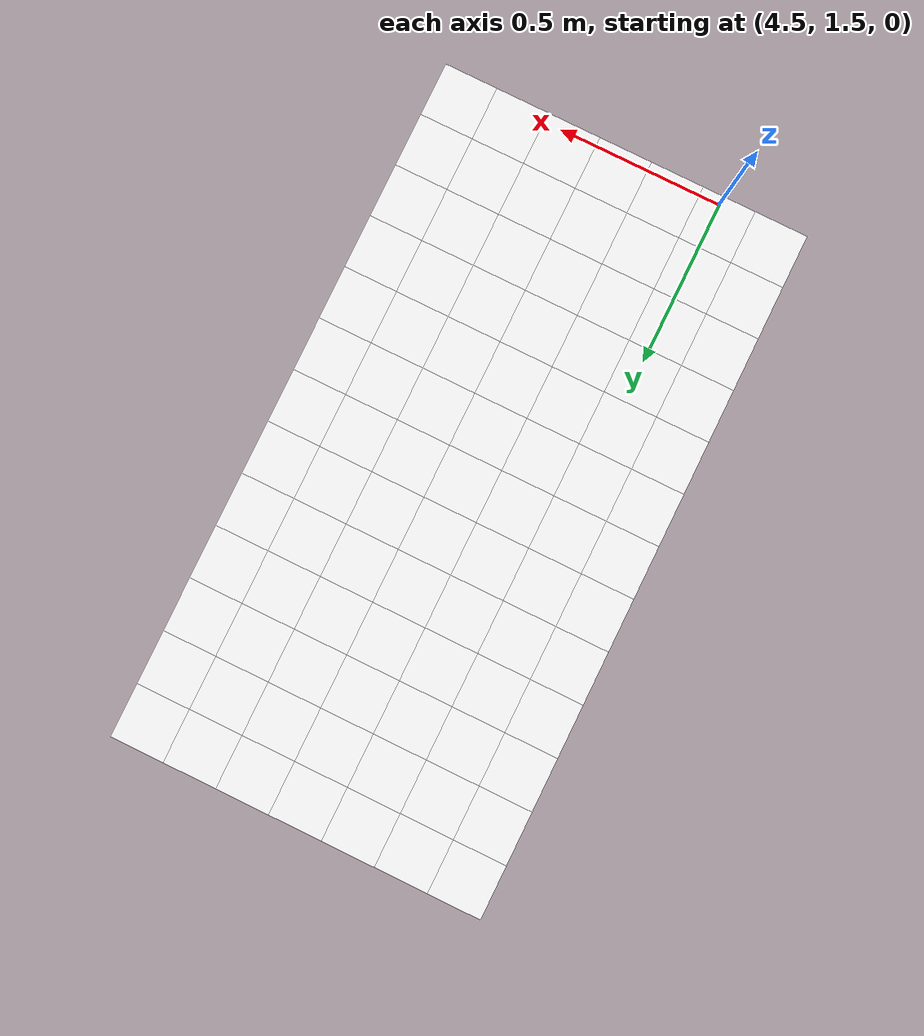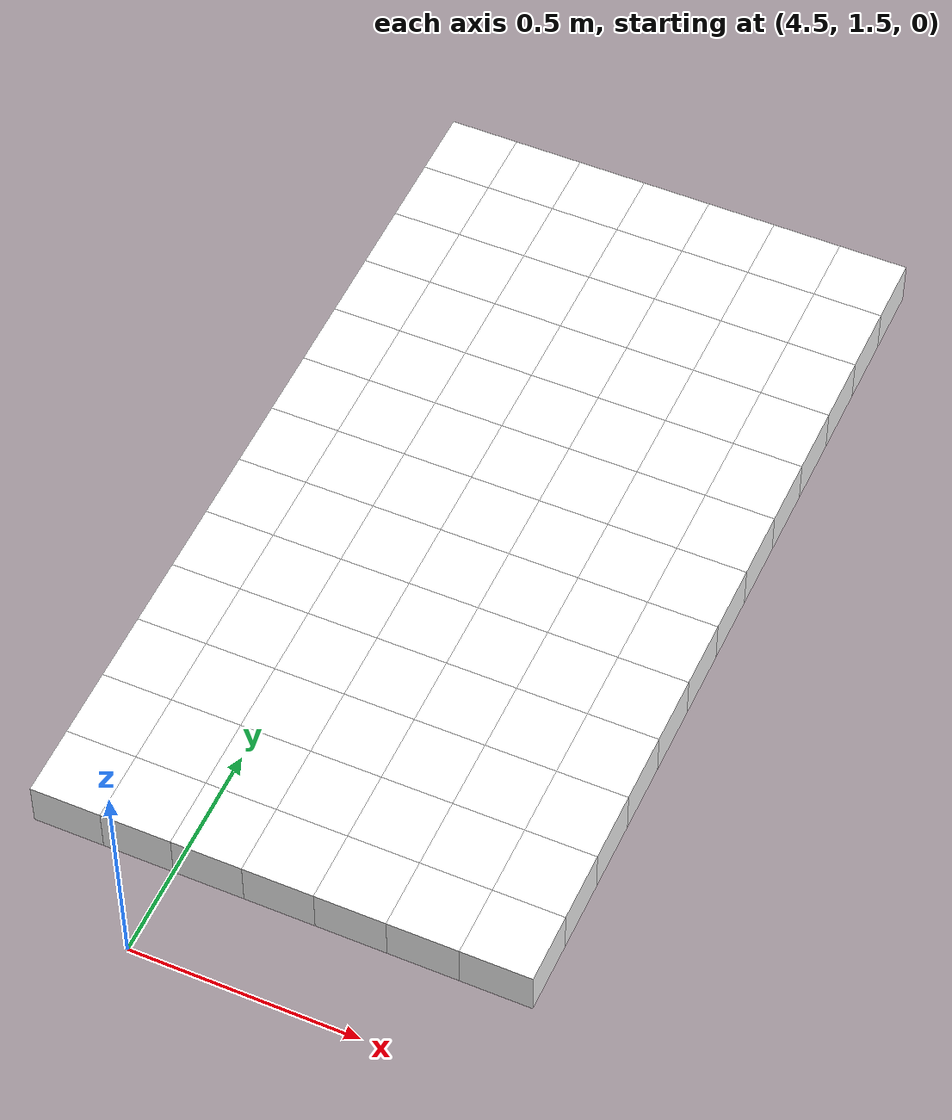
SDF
<sdf version="1.7">
 <world name="default">
  <include><uri>model://sun</uri></include>
  <model name="static_environment">
   <static>true</static>
   <link name="region_753">
    <pose>4.350000000000005 1.65 0.26 0.0 0.0 0.0</pose>
    <collision name="region_753_collision">
     <geometry><box><size>0.15 0.15 0.1</size></box></geometry>
     <surface><friction><ode><mu>1.0</mu><mu2>1.0</mu2></ode></friction></surface>
    </collision>
    <visual name="region_753_visual">
     <geometry><box><size>0.15 0.15 0.1</size></box></geometry>
     <material><ambient>1.0 1.0 1.0 1.0</ambient><diffuse>1.0 1.0 1.0 1.0</diffuse></material>
    </visual>
   </link>
   <link name="region_754">
    <pose>4.500000000000005 1.65 0.26 0.0 0.0 0.0</pose>
    <collision name="region_754_collision">
     <geometry><box><size>0.15 0.15 0.1</size></box></geometry>
     <surface><friction><ode><mu>1.0</mu><mu2>1.0</mu2></ode></friction></surface>
    </collision>
    <visual name="region_754_visual">
     <geometry><box><size>0.15 0.15 0.1</size></box></geometry>
     <material><ambient>1.0 1.0 1.0 1.0</ambient><diffuse>1.0 1.0 1.0 1.0</diffuse></material>
    </visual>
   </link>
   <link name="region_755">
    <pose>4.650000000000006 1.65 0.26 0.0 0.0 0.0</pose>
    <collision name="region_755_collision">
     <geometry><box><size>0.15 0.15 0.1</size></box></geometry>
     <surface><friction><ode><mu>1.0</mu><mu2>1.0</mu2></ode></friction></surface>
    </collision>
    <visual name="region_755_visual">
     <geometry><box><size>0.15 0.15 0.1</size></box></geometry>
     <material><ambient>1.0 1.0 1.0 1.0</ambient><diffuse>1.0 1.0 1.0 1.0</diffuse></material>
    </visual>
   </link>
   <link name="region_756">
    <pose>4.800000000000006 1.65 0.26 0.0 0.0 0.0</pose>
    <collision name="region_756_collision">
     <geometry><box><size>0.15 0.15 0.1</size></box></geometry>
     <surface><friction><ode><mu>1.0</mu><mu2>1.0</mu2></ode></friction></surface>
    </collision>
    <visual name="region_756_visual">
     <geometry><box><size>0.15 0.15 0.1</size></box></geometry>
     <material><ambient>1.0 1.0 1.0 1.0</ambient><diffuse>1.0 1.0 1.0 1.0</diffuse></material>
    </visual>
   </link>
   <link name="region_757">
    <pose>4.950000000000006 1.65 0.26 0.0 0.0 0.0</pose>
    <collision name="region_757_collision">
     <geometry><box><size>0.15 0.15 0.1</size></box></geometry>
     <surface><friction><ode><mu>1.0</mu><mu2>1.0</mu2></ode></friction></surface>
    </collision>
    <visual name="region_757_visual">
     <geometry><box><size>0.15 0.15 0.1</size></box></geometry>
     <material><ambient>1.0 1.0 1.0 1.0</ambient><diffuse>1.0 1.0 1.0 1.0</diffuse></material>
    </visual>
   </link>
   <link name="region_758">
    <pose>5.100000000000007 1.65 0.26 0.0 0.0 0.0</pose>
    <collision name="region_758_collision">
     <geometry><box><size>0.15 0.15 0.1</size></box></geometry>
     <surface><friction><ode><mu>1.0</mu><mu2>1.0</mu2></ode></friction></surface>
    </collision>
    <visual name="region_758_visual">
     <geometry><box><size>0.15 0.15 0.1</size></box></geometry>
     <material><ambient>1.0 1.0 1.0 1.0</ambient><diffuse>1.0 1.0 1.0 1.0</diffuse></material>
    </visual>
   </link>
   <link name="region_759">
    <pose>5.250000000000007 1.65 0.26 0.0 0.0 0.0</pose>
    <collision name="region_759_collision">
     <geometry><box><size>0.15 0.15 0.1</size></box></geometry>
     <surface><friction><ode><mu>1.0</mu><mu2>1.0</mu2></ode></friction></surface>
    </collision>
    <visual name="region_759_visual">
     <geometry><box><size>0.15 0.15 0.1</size></box></geometry>
     <material><ambient>1.0 1.0 1.0 1.0</ambient><diffuse>1.0 1.0 1.0 1.0</diffuse></material>
    </visual>
   </link>
   <link name="region_773">
    <pose>4.350000000000005 1.7999999999999998 0.26 0.0 0.0 0.0</pose>
    <collision name="region_773_collision">
     <geometry><box><size>0.15 0.15 0.1</size></box></geometry>
     <surface><friction><ode><mu>1.0</mu><mu2>1.0</mu2></ode></friction></surface>
    </collision>
    <visual name="region_773_visual">
     <geometry><box><size>0.15 0.15 0.1</size></box></geometry>
     <material><ambient>1.0 1.0 1.0 1.0</ambient><diffuse>1.0 1.0 1.0 1.0</diffuse></material>
    </visual>
   </link>
   <link name="region_774">
    <pose>4.500000000000005 1.7999999999999998 0.26 0.0 0.0 0.0</pose>
    <collision name="region_774_collision">
     <geometry><box><size>0.15 0.15 0.1</size></box></geometry>
     <surface><friction><ode><mu>1.0</mu><mu2>1.0</mu2></ode></friction></surface>
    </collision>
    <visual name="region_774_visual">
     <geometry><box><size>0.15 0.15 0.1</size></box></geometry>
     <material><ambient>1.0 1.0 1.0 1.0</ambient><diffuse>1.0 1.0 1.0 1.0</diffuse></material>
    </visual>
   </link>
   <link name="region_775">
    <pose>4.650000000000006 1.7999999999999998 0.26 0.0 0.0 0.0</pose>
    <collision name="region_775_collision">
     <geometry><box><size>0.15 0.15 0.1</size></box></geometry>
     <surface><friction><ode><mu>1.0</mu><mu2>1.0</mu2></ode></friction></surface>
    </collision>
    <visual name="region_775_visual">
     <geometry><box><size>0.15 0.15 0.1</size></box></geometry>
     <material><ambient>1.0 1.0 1.0 1.0</ambient><diffuse>1.0 1.0 1.0 1.0</diffuse></material>
    </visual>
   </link>
   <link name="region_776">
    <pose>4.800000000000006 1.7999999999999998 0.26 0.0 0.0 0.0</pose>
    <collision name="region_776_collision">
     <geometry><box><size>0.15 0.15 0.1</size></box></geometry>
     <surface><friction><ode><mu>1.0</mu><mu2>1.0</mu2></ode></friction></surface>
    </collision>
    <visual name="region_776_visual">
     <geometry><box><size>0.15 0.15 0.1</size></box></geometry>
     <material><ambient>1.0 1.0 1.0 1.0</ambient><diffuse>1.0 1.0 1.0 1.0</diffuse></material>
    </visual>
   </link>
   <link name="region_777">
    <pose>4.950000000000006 1.7999999999999998 0.26 0.0 0.0 0.0</pose>
    <collision name="region_777_collision">
     <geometry><box><size>0.15 0.15 0.1</size></box></geometry>
     <surface><friction><ode><mu>1.0</mu><mu2>1.0</mu2></ode></friction></surface>
    </collision>
    <visual name="region_777_visual">
     <geometry><box><size>0.15 0.15 0.1</size></box></geometry>
     <material><ambient>1.0 1.0 1.0 1.0</ambient><diffuse>1.0 1.0 1.0 1.0</diffuse></material>
    </visual>
   </link>
   <link name="region_778">
    <pose>5.100000000000007 1.7999999999999998 0.26 0.0 0.0 0.0</pose>
    <collision name="region_778_collision">
     <geometry><box><size>0.15 0.15 0.1</size></box></geometry>
     <surface><friction><ode><mu>1.0</mu><mu2>1.0</mu2></ode></friction></surface>
    </collision>
    <visual name="region_778_visual">
     <geometry><box><size>0.15 0.15 0.1</size></box></geometry>
     <material><ambient>1.0 1.0 1.0 1.0</ambient><diffuse>1.0 1.0 1.0 1.0</diffuse></material>
    </visual>
   </link>
   <link name="region_779">
    <pose>5.250000000000007 1.7999999999999998 0.26 0.0 0.0 0.0</pose>
    <collision name="region_779_collision">
     <geometry><box><size>0.15 0.15 0.1</size></box></geometry>
     <surface><friction><ode><mu>1.0</mu><mu2>1.0</mu2></ode></friction></surface>
    </collision>
    <visual name="region_779_visual">
     <geometry><box><size>0.15 0.15 0.1</size></box></geometry>
     <material><ambient>1.0 1.0 1.0 1.0</ambient><diffuse>1.0 1.0 1.0 1.0</diffuse></material>
    </visual>
   </link>
   <link name="region_793">
    <pose>4.350000000000005 1.9499999999999997 0.26 0.0 0.0 0.0</pose>
    <collision name="region_793_collision">
     <geometry><box><size>0.15 0.15 0.1</size></box></geometry>
     <surface><friction><ode><mu>1.0</mu><mu2>1.0</mu2></ode></friction></surface>
    </collision>
    <visual name="region_793_visual">
     <geometry><box><size>0.15 0.15 0.1</size></box></geometry>
     <material><ambient>1.0 1.0 1.0 1.0</ambient><diffuse>1.0 1.0 1.0 1.0</diffuse></material>
    </visual>
   </link>
   <link name="region_794">
    <pose>4.500000000000005 1.9499999999999997 0.26 0.0 0.0 0.0</pose>
    <collision name="region_794_collision">
     <geometry><box><size>0.15 0.15 0.1</size></box></geometry>
     <surface><friction><ode><mu>1.0</mu><mu2>1.0</mu2></ode></friction></surface>
    </collision>
    <visual name="region_794_visual">
     <geometry><box><size>0.15 0.15 0.1</size></box></geometry>
     <material><ambient>1.0 1.0 1.0 1.0</ambient><diffuse>1.0 1.0 1.0 1.0</diffuse></material>
    </visual>
   </link>
   <link name="region_795">
    <pose>4.650000000000006 1.9499999999999997 0.26 0.0 0.0 0.0</pose>
    <collision name="region_795_collision">
     <geometry><box><size>0.15 0.15 0.1</size></box></geometry>
     <surface><friction><ode><mu>1.0</mu><mu2>1.0</mu2></ode></friction></surface>
    </collision>
    <visual name="region_795_visual">
     <geometry><box><size>0.15 0.15 0.1</size></box></geometry>
     <material><ambient>1.0 1.0 1.0 1.0</ambient><diffuse>1.0 1.0 1.0 1.0</diffuse></material>
    </visual>
   </link>
   <link name="region_796">
    <pose>4.800000000000006 1.9499999999999997 0.26 0.0 0.0 0.0</pose>
    <collision name="region_796_collision">
     <geometry><box><size>0.15 0.15 0.1</size></box></geometry>
     <surface><friction><ode><mu>1.0</mu><mu2>1.0</mu2></ode></friction></surface>
    </collision>
    <visual name="region_796_visual">
     <geometry><box><size>0.15 0.15 0.1</size></box></geometry>
     <material><ambient>1.0 1.0 1.0 1.0</ambient><diffuse>1.0 1.0 1.0 1.0</diffuse></material>
    </visual>
   </link>
   <link name="region_797">
    <pose>4.950000000000006 1.9499999999999997 0.26 0.0 0.0 0.0</pose>
    <collision name="region_797_collision">
     <geometry><box><size>0.15 0.15 0.1</size></box></geometry>
     <surface><friction><ode><mu>1.0</mu><mu2>1.0</mu2></ode></friction></surface>
    </collision>
    <visual name="region_797_visual">
     <geometry><box><size>0.15 0.15 0.1</size></box></geometry>
     <material><ambient>1.0 1.0 1.0 1.0</ambient><diffuse>1.0 1.0 1.0 1.0</diffuse></material>
    </visual>
   </link>
   <link name="region_798">
    <pose>5.100000000000007 1.9499999999999997 0.26 0.0 0.0 0.0</pose>
    <collision name="region_798_collision">
     <geometry><box><size>0.15 0.15 0.1</size></box></geometry>
     <surface><friction><ode><mu>1.0</mu><mu2>1.0</mu2></ode></friction></surface>
    </collision>
    <visual name="region_798_visual">
     <geometry><box><size>0.15 0.15 0.1</size></box></geometry>
     <material><ambient>1.0 1.0 1.0 1.0</ambient><diffuse>1.0 1.0 1.0 1.0</diffuse></material>
    </visual>
   </link>
   <link name="region_799">
    <pose>5.250000000000007 1.9499999999999997 0.26 0.0 0.0 0.0</pose>
    <collision name="region_799_collision">
     <geometry><box><size>0.15 0.15 0.1</size></box></geometry>
     <surface><friction><ode><mu>1.0</mu><mu2>1.0</mu2></ode></friction></surface>
    </collision>
    <visual name="region_799_visual">
     <geometry><box><size>0.15 0.15 0.1</size></box></geometry>
     <material><ambient>1.0 1.0 1.0 1.0</ambient><diffuse>1.0 1.0 1.0 1.0</diffuse></material>
    </visual>
   </link>
   <link name="region_813">
    <pose>4.350000000000005 2.0999999999999996 0.26 0.0 0.0 0.0</pose>
    <collision name="region_813_collision">
     <geometry><box><size>0.15 0.15 0.1</size></box></geometry>
     <surface><friction><ode><mu>1.0</mu><mu2>1.0</mu2></ode></friction></surface>
    </collision>
    <visual name="region_813_visual">
     <geometry><box><size>0.15 0.15 0.1</size></box></geometry>
     <material><ambient>1.0 1.0 1.0 1.0</ambient><diffuse>1.0 1.0 1.0 1.0</diffuse></material>
    </visual>
   </link>
   <link name="region_814">
    <pose>4.500000000000005 2.0999999999999996 0.26 0.0 0.0 0.0</pose>
    <collision name="region_814_collision">
     <geometry><box><size>0.15 0.15 0.1</size></box></geometry>
     <surface><friction><ode><mu>1.0</mu><mu2>1.0</mu2></ode></friction></surface>
    </collision>
    <visual name="region_814_visual">
     <geometry><box><size>0.15 0.15 0.1</size></box></geometry>
     <material><ambient>1.0 1.0 1.0 1.0</ambient><diffuse>1.0 1.0 1.0 1.0</diffuse></material>
    </visual>
   </link>
   <link name="region_815">
    <pose>4.650000000000006 2.0999999999999996 0.26 0.0 0.0 0.0</pose>
    <collision name="region_815_collision">
     <geometry><box><size>0.15 0.15 0.1</size></box></geometry>
     <surface><friction><ode><mu>1.0</mu><mu2>1.0</mu2></ode></friction></surface>
    </collision>
    <visual name="region_815_visual">
     <geometry><box><size>0.15 0.15 0.1</size></box></geometry>
     <material><ambient>1.0 1.0 1.0 1.0</ambient><diffuse>1.0 1.0 1.0 1.0</diffuse></material>
    </visual>
   </link>
   <link name="region_816">
    <pose>4.800000000000006 2.0999999999999996 0.26 0.0 0.0 0.0</pose>
    <collision name="region_816_collision">
     <geometry><box><size>0.15 0.15 0.1</size></box></geometry>
     <surface><friction><ode><mu>1.0</mu><mu2>1.0</mu2></ode></friction></surface>
    </collision>
    <visual name="region_816_visual">
     <geometry><box><size>0.15 0.15 0.1</size></box></geometry>
     <material><ambient>1.0 1.0 1.0 1.0</ambient><diffuse>1.0 1.0 1.0 1.0</diffuse></material>
    </visual>
   </link>
   <link name="region_817">
    <pose>4.950000000000006 2.0999999999999996 0.26 0.0 0.0 0.0</pose>
    <collision name="region_817_collision">
     <geometry><box><size>0.15 0.15 0.1</size></box></geometry>
     <surface><friction><ode><mu>1.0</mu><mu2>1.0</mu2></ode></friction></surface>
    </collision>
    <visual name="region_817_visual">
     <geometry><box><size>0.15 0.15 0.1</size></box></geometry>
     <material><ambient>1.0 1.0 1.0 1.0</ambient><diffuse>1.0 1.0 1.0 1.0</diffuse></material>
    </visual>
   </link>
   <link name="region_818">
    <pose>5.100000000000007 2.0999999999999996 0.26 0.0 0.0 0.0</pose>
    <collision name="region_818_collision">
     <geometry><box><size>0.15 0.15 0.1</size></box></geometry>
     <surface><friction><ode><mu>1.0</mu><mu2>1.0</mu2></ode></friction></surface>
    </collision>
    <visual name="region_818_visual">
     <geometry><box><size>0.15 0.15 0.1</size></box></geometry>
     <material><ambient>1.0 1.0 1.0 1.0</ambient><diffuse>1.0 1.0 1.0 1.0</diffuse></material>
    </visual>
   </link>
   <link name="region_819">
    <pose>5.250000000000007 2.0999999999999996 0.26 0.0 0.0 0.0</pose>
    <collision name="region_819_collision">
     <geometry><box><size>0.15 0.15 0.1</size></box></geometry>
     <surface><friction><ode><mu>1.0</mu><mu2>1.0</mu2></ode></friction></surface>
    </collision>
    <visual name="region_819_visual">
     <geometry><box><size>0.15 0.15 0.1</size></box></geometry>
     <material><ambient>1.0 1.0 1.0 1.0</ambient><diffuse>1.0 1.0 1.0 1.0</diffuse></material>
    </visual>
   </link>
   <link name="region_833">
    <pose>4.350000000000005 2.2499999999999996 0.26 0.0 0.0 0.0</pose>
    <collision name="region_833_collision">
     <geometry><box><size>0.15 0.15 0.1</size></box></geometry>
     <surface><friction><ode><mu>1.0</mu><mu2>1.0</mu2></ode></friction></surface>
    </collision>
    <visual name="region_833_visual">
     <geometry><box><size>0.15 0.15 0.1</size></box></geometry>
     <material><ambient>1.0 1.0 1.0 1.0</ambient><diffuse>1.0 1.0 1.0 1.0</diffuse></material>
    </visual>
   </link>
   <link name="region_834">
    <pose>4.500000000000005 2.2499999999999996 0.26 0.0 0.0 0.0</pose>
    <collision name="region_834_collision">
     <geometry><box><size>0.15 0.15 0.1</size></box></geometry>
     <surface><friction><ode><mu>1.0</mu><mu2>1.0</mu2></ode></friction></surface>
    </collision>
    <visual name="region_834_visual">
     <geometry><box><size>0.15 0.15 0.1</size></box></geometry>
     <material><ambient>1.0 1.0 1.0 1.0</ambient><diffuse>1.0 1.0 1.0 1.0</diffuse></material>
    </visual>
   </link>
   <link name="region_835">
    <pose>4.650000000000006 2.2499999999999996 0.26 0.0 0.0 0.0</pose>
    <collision name="region_835_collision">
     <geometry><box><size>0.15 0.15 0.1</size></box></geometry>
     <surface><friction><ode><mu>1.0</mu><mu2>1.0</mu2></ode></friction></surface>
    </collision>
    <visual name="region_835_visual">
     <geometry><box><size>0.15 0.15 0.1</size></box></geometry>
     <material><ambient>1.0 1.0 1.0 1.0</ambient><diffuse>1.0 1.0 1.0 1.0</diffuse></material>
    </visual>
   </link>
   <link name="region_836">
    <pose>4.800000000000006 2.2499999999999996 0.26 0.0 0.0 0.0</pose>
    <collision name="region_836_collision">
     <geometry><box><size>0.15 0.15 0.1</size></box></geometry>
     <surface><friction><ode><mu>1.0</mu><mu2>1.0</mu2></ode></friction></surface>
    </collision>
    <visual name="region_836_visual">
     <geometry><box><size>0.15 0.15 0.1</size></box></geometry>
     <material><ambient>1.0 1.0 1.0 1.0</ambient><diffuse>1.0 1.0 1.0 1.0</diffuse></material>
    </visual>
   </link>
   <link name="region_837">
    <pose>4.950000000000006 2.2499999999999996 0.26 0.0 0.0 0.0</pose>
    <collision name="region_837_collision">
     <geometry><box><size>0.15 0.15 0.1</size></box></geometry>
     <surface><friction><ode><mu>1.0</mu><mu2>1.0</mu2></ode></friction></surface>
    </collision>
    <visual name="region_837_visual">
     <geometry><box><size>0.15 0.15 0.1</size></box></geometry>
     <material><ambient>1.0 1.0 1.0 1.0</ambient><diffuse>1.0 1.0 1.0 1.0</diffuse></material>
    </visual>
   </link>
   <link name="region_838">
    <pose>5.100000000000007 2.2499999999999996 0.26 0.0 0.0 0.0</pose>
    <collision name="region_838_collision">
     <geometry><box><size>0.15 0.15 0.1</size></box></geometry>
     <surface><friction><ode><mu>1.0</mu><mu2>1.0</mu2></ode></friction></surface>
    </collision>
    <visual name="region_838_visual">
     <geometry><box><size>0.15 0.15 0.1</size></box></geometry>
     <material><ambient>1.0 1.0 1.0 1.0</ambient><diffuse>1.0 1.0 1.0 1.0</diffuse></material>
    </visual>
   </link>
   <link name="region_839">
    <pose>5.250000000000007 2.2499999999999996 0.26 0.0 0.0 0.0</pose>
    <collision name="region_839_collision">
     <geometry><box><size>0.15 0.15 0.1</size></box></geometry>
     <surface><friction><ode><mu>1.0</mu><mu2>1.0</mu2></ode></friction></surface>
    </collision>
    <visual name="region_839_visual">
     <geometry><box><size>0.15 0.15 0.1</size></box></geometry>
     <material><ambient>1.0 1.0 1.0 1.0</ambient><diffuse>1.0 1.0 1.0 1.0</diffuse></material>
    </visual>
   </link>
   <link name="region_853">
    <pose>4.350000000000005 2.3999999999999995 0.26 0.0 0.0 0.0</pose>
    <collision name="region_853_collision">
     <geometry><box><size>0.15 0.15 0.1</size></box></geometry>
     <surface><friction><ode><mu>1.0</mu><mu2>1.0</mu2></ode></friction></surface>
    </collision>
    <visual name="region_853_visual">
     <geometry><box><size>0.15 0.15 0.1</size></box></geometry>
     <material><ambient>1.0 1.0 1.0 1.0</ambient><diffuse>1.0 1.0 1.0 1.0</diffuse></material>
    </visual>
   </link>
   <link name="region_854">
    <pose>4.500000000000005 2.3999999999999995 0.26 0.0 0.0 0.0</pose>
    <collision name="region_854_collision">
     <geometry><box><size>0.15 0.15 0.1</size></box></geometry>
     <surface><friction><ode><mu>1.0</mu><mu2>1.0</mu2></ode></friction></surface>
    </collision>
    <visual name="region_854_visual">
     <geometry><box><size>0.15 0.15 0.1</size></box></geometry>
     <material><ambient>1.0 1.0 1.0 1.0</ambient><diffuse>1.0 1.0 1.0 1.0</diffuse></material>
    </visual>
   </link>
   <link name="region_855">
    <pose>4.650000000000006 2.3999999999999995 0.26 0.0 0.0 0.0</pose>
    <collision name="region_855_collision">
     <geometry><box><size>0.15 0.15 0.1</size></box></geometry>
     <surface><friction><ode><mu>1.0</mu><mu2>1.0</mu2></ode></friction></surface>
    </collision>
    <visual name="region_855_visual">
     <geometry><box><size>0.15 0.15 0.1</size></box></geometry>
     <material><ambient>1.0 1.0 1.0 1.0</ambient><diffuse>1.0 1.0 1.0 1.0</diffuse></material>
    </visual>
   </link>
   <link name="region_856">
    <pose>4.800000000000006 2.3999999999999995 0.26 0.0 0.0 0.0</pose>
    <collision name="region_856_collision">
     <geometry><box><size>0.15 0.15 0.1</size></box></geometry>
     <surface><friction><ode><mu>1.0</mu><mu2>1.0</mu2></ode></friction></surface>
    </collision>
    <visual name="region_856_visual">
     <geometry><box><size>0.15 0.15 0.1</size></box></geometry>
     <material><ambient>1.0 1.0 1.0 1.0</ambient><diffuse>1.0 1.0 1.0 1.0</diffuse></material>
    </visual>
   </link>
   <link name="region_857">
    <pose>4.950000000000006 2.3999999999999995 0.26 0.0 0.0 0.0</pose>
    <collision name="region_857_collision">
     <geometry><box><size>0.15 0.15 0.1</size></box></geometry>
     <surface><friction><ode><mu>1.0</mu><mu2>1.0</mu2></ode></friction></surface>
    </collision>
    <visual name="region_857_visual">
     <geometry><box><size>0.15 0.15 0.1</size></box></geometry>
     <material><ambient>1.0 1.0 1.0 1.0</ambient><diffuse>1.0 1.0 1.0 1.0</diffuse></material>
    </visual>
   </link>
   <link name="region_858">
    <pose>5.100000000000007 2.3999999999999995 0.26 0.0 0.0 0.0</pose>
    <collision name="region_858_collision">
     <geometry><box><size>0.15 0.15 0.1</size></box></geometry>
     <surface><friction><ode><mu>1.0</mu><mu2>1.0</mu2></ode></friction></surface>
    </collision>
    <visual name="region_858_visual">
     <geometry><box><size>0.15 0.15 0.1</size></box></geometry>
     <material><ambient>1.0 1.0 1.0 1.0</ambient><diffuse>1.0 1.0 1.0 1.0</diffuse></material>
    </visual>
   </link>
   <link name="region_859">
    <pose>5.250000000000007 2.3999999999999995 0.26 0.0 0.0 0.0</pose>
    <collision name="region_859_collision">
     <geometry><box><size>0.15 0.15 0.1</size></box></geometry>
     <surface><friction><ode><mu>1.0</mu><mu2>1.0</mu2></ode></friction></surface>
    </collision>
    <visual name="region_859_visual">
     <geometry><box><size>0.15 0.15 0.1</size></box></geometry>
     <material><ambient>1.0 1.0 1.0 1.0</ambient><diffuse>1.0 1.0 1.0 1.0</diffuse></material>
    </visual>
   </link>
   <link name="region_873">
    <pose>4.350000000000005 2.5499999999999994 0.26 0.0 0.0 0.0</pose>
    <collision name="region_873_collision">
     <geometry><box><size>0.15 0.15 0.1</size></box></geometry>
     <surface><friction><ode><mu>1.0</mu><mu2>1.0</mu2></ode></friction></surface>
    </collision>
    <visual name="region_873_visual">
     <geometry><box><size>0.15 0.15 0.1</size></box></geometry>
     <material><ambient>1.0 1.0 1.0 1.0</ambient><diffuse>1.0 1.0 1.0 1.0</diffuse></material>
    </visual>
   </link>
   <link name="region_874">
    <pose>4.500000000000005 2.5499999999999994 0.26 0.0 0.0 0.0</pose>
    <collision name="region_874_collision">
     <geometry><box><size>0.15 0.15 0.1</size></box></geometry>
     <surface><friction><ode><mu>1.0</mu><mu2>1.0</mu2></ode></friction></surface>
    </collision>
    <visual name="region_874_visual">
     <geometry><box><size>0.15 0.15 0.1</size></box></geometry>
     <material><ambient>1.0 1.0 1.0 1.0</ambient><diffuse>1.0 1.0 1.0 1.0</diffuse></material>
    </visual>
   </link>
   <link name="region_875">
    <pose>4.650000000000006 2.5499999999999994 0.26 0.0 0.0 0.0</pose>
    <collision name="region_875_collision">
     <geometry><box><size>0.15 0.15 0.1</size></box></geometry>
     <surface><friction><ode><mu>1.0</mu><mu2>1.0</mu2></ode></friction></surface>
    </collision>
    <visual name="region_875_visual">
     <geometry><box><size>0.15 0.15 0.1</size></box></geometry>
     <material><ambient>1.0 1.0 1.0 1.0</ambient><diffuse>1.0 1.0 1.0 1.0</diffuse></material>
    </visual>
   </link>
   <link name="region_876">
    <pose>4.800000000000006 2.5499999999999994 0.26 0.0 0.0 0.0</pose>
    <collision name="region_876_collision">
     <geometry><box><size>0.15 0.15 0.1</size></box></geometry>
     <surface><friction><ode><mu>1.0</mu><mu2>1.0</mu2></ode></friction></surface>
    </collision>
    <visual name="region_876_visual">
     <geometry><box><size>0.15 0.15 0.1</size></box></geometry>
     <material><ambient>1.0 1.0 1.0 1.0</ambient><diffuse>1.0 1.0 1.0 1.0</diffuse></material>
    </visual>
   </link>
   <link name="region_877">
    <pose>4.950000000000006 2.5499999999999994 0.26 0.0 0.0 0.0</pose>
    <collision name="region_877_collision">
     <geometry><box><size>0.15 0.15 0.1</size></box></geometry>
     <surface><friction><ode><mu>1.0</mu><mu2>1.0</mu2></ode></friction></surface>
    </collision>
    <visual name="region_877_visual">
     <geometry><box><size>0.15 0.15 0.1</size></box></geometry>
     <material><ambient>1.0 1.0 1.0 1.0</ambient><diffuse>1.0 1.0 1.0 1.0</diffuse></material>
    </visual>
   </link>
   <link name="region_878">
    <pose>5.100000000000007 2.5499999999999994 0.26 0.0 0.0 0.0</pose>
    <collision name="region_878_collision">
     <geometry><box><size>0.15 0.15 0.1</size></box></geometry>
     <surface><friction><ode><mu>1.0</mu><mu2>1.0</mu2></ode></friction></surface>
    </collision>
    <visual name="region_878_visual">
     <geometry><box><size>0.15 0.15 0.1</size></box></geometry>
     <material><ambient>1.0 1.0 1.0 1.0</ambient><diffuse>1.0 1.0 1.0 1.0</diffuse></material>
    </visual>
   </link>
   <link name="region_879">
    <pose>5.250000000000007 2.5499999999999994 0.26 0.0 0.0 0.0</pose>
    <collision name="region_879_collision">
     <geometry><box><size>0.15 0.15 0.1</size></box></geometry>
     <surface><friction><ode><mu>1.0</mu><mu2>1.0</mu2></ode></friction></surface>
    </collision>
    <visual name="region_879_visual">
     <geometry><box><size>0.15 0.15 0.1</size></box></geometry>
     <material><ambient>1.0 1.0 1.0 1.0</ambient><diffuse>1.0 1.0 1.0 1.0</diffuse></material>
    </visual>
   </link>
   <link name="region_893">
    <pose>4.350000000000005 2.6999999999999997 0.26 0.0 0.0 0.0</pose>
    <collision name="region_893_collision">
     <geometry><box><size>0.15 0.15 0.1</size></box></geometry>
     <surface><friction><ode><mu>1.0</mu><mu2>1.0</mu2></ode></friction></surface>
    </collision>
    <visual name="region_893_visual">
     <geometry><box><size>0.15 0.15 0.1</size></box></geometry>
     <material><ambient>1.0 1.0 1.0 1.0</ambient><diffuse>1.0 1.0 1.0 1.0</diffuse></material>
    </visual>
   </link>
   <link name="region_894">
    <pose>4.500000000000005 2.6999999999999997 0.26 0.0 0.0 0.0</pose>
    <collision name="region_894_collision">
     <geometry><box><size>0.15 0.15 0.1</size></box></geometry>
     <surface><friction><ode><mu>1.0</mu><mu2>1.0</mu2></ode></friction></surface>
    </collision>
    <visual name="region_894_visual">
     <geometry><box><size>0.15 0.15 0.1</size></box></geometry>
     <material><ambient>1.0 1.0 1.0 1.0</ambient><diffuse>1.0 1.0 1.0 1.0</diffuse></material>
    </visual>
   </link>
   <link name="region_895">
    <pose>4.650000000000006 2.6999999999999997 0.26 0.0 0.0 0.0</pose>
    <collision name="region_895_collision">
     <geometry><box><size>0.15 0.15 0.1</size></box></geometry>
     <surface><friction><ode><mu>1.0</mu><mu2>1.0</mu2></ode></friction></surface>
    </collision>
    <visual name="region_895_visual">
     <geometry><box><size>0.15 0.15 0.1</size></box></geometry>
     <material><ambient>1.0 1.0 1.0 1.0</ambient><diffuse>1.0 1.0 1.0 1.0</diffuse></material>
    </visual>
   </link>
   <link name="region_896">
    <pose>4.800000000000006 2.6999999999999997 0.26 0.0 0.0 0.0</pose>
    <collision name="region_896_collision">
     <geometry><box><size>0.15 0.15 0.1</size></box></geometry>
     <surface><friction><ode><mu>1.0</mu><mu2>1.0</mu2></ode></friction></surface>
    </collision>
    <visual name="region_896_visual">
     <geometry><box><size>0.15 0.15 0.1</size></box></geometry>
     <material><ambient>1.0 1.0 1.0 1.0</ambient><diffuse>1.0 1.0 1.0 1.0</diffuse></material>
    </visual>
   </link>
   <link name="region_897">
    <pose>4.950000000000006 2.6999999999999997 0.26 0.0 0.0 0.0</pose>
    <collision name="region_897_collision">
     <geometry><box><size>0.15 0.15 0.1</size></box></geometry>
     <surface><friction><ode><mu>1.0</mu><mu2>1.0</mu2></ode></friction></surface>
    </collision>
    <visual name="region_897_visual">
     <geometry><box><size>0.15 0.15 0.1</size></box></geometry>
     <material><ambient>1.0 1.0 1.0 1.0</ambient><diffuse>1.0 1.0 1.0 1.0</diffuse></material>
    </visual>
   </link>
   <link name="region_898">
    <pose>5.100000000000007 2.6999999999999997 0.26 0.0 0.0 0.0</pose>
    <collision name="region_898_collision">
     <geometry><box><size>0.15 0.15 0.1</size></box></geometry>
     <surface><friction><ode><mu>1.0</mu><mu2>1.0</mu2></ode></friction></surface>
    </collision>
    <visual name="region_898_visual">
     <geometry><box><size>0.15 0.15 0.1</size></box></geometry>
     <material><ambient>1.0 1.0 1.0 1.0</ambient><diffuse>1.0 1.0 1.0 1.0</diffuse></material>
    </visual>
   </link>
   <link name="region_899">
    <pose>5.250000000000007 2.6999999999999997 0.26 0.0 0.0 0.0</pose>
    <collision name="region_899_collision">
     <geometry><box><size>0.15 0.15 0.1</size></box></geometry>
     <surface><friction><ode><mu>1.0</mu><mu2>1.0</mu2></ode></friction></surface>
    </collision>
    <visual name="region_899_visual">
     <geometry><box><size>0.15 0.15 0.1</size></box></geometry>
     <material><ambient>1.0 1.0 1.0 1.0</ambient><diffuse>1.0 1.0 1.0 1.0</diffuse></material>
    </visual>
   </link>
   <link name="region_913">
    <pose>4.350000000000005 2.8499999999999996 0.26 0.0 0.0 0.0</pose>
    <collision name="region_913_collision">
     <geometry><box><size>0.15 0.15 0.1</size></box></geometry>
     <surface><friction><ode><mu>1.0</mu><mu2>1.0</mu2></ode></friction></surface>
    </collision>
    <visual name="region_913_visual">
     <geometry><box><size>0.15 0.15 0.1</size></box></geometry>
     <material><ambient>1.0 1.0 1.0 1.0</ambient><diffuse>1.0 1.0 1.0 1.0</diffuse></material>
    </visual>
   </link>
   <link name="region_914">
    <pose>4.500000000000005 2.8499999999999996 0.26 0.0 0.0 0.0</pose>
    <collision name="region_914_collision">
     <geometry><box><size>0.15 0.15 0.1</size></box></geometry>
     <surface><friction><ode><mu>1.0</mu><mu2>1.0</mu2></ode></friction></surface>
    </collision>
    <visual name="region_914_visual">
     <geometry><box><size>0.15 0.15 0.1</size></box></geometry>
     <material><ambient>1.0 1.0 1.0 1.0</ambient><diffuse>1.0 1.0 1.0 1.0</diffuse></material>
    </visual>
   </link>
   <link name="region_915">
    <pose>4.650000000000006 2.8499999999999996 0.26 0.0 0.0 0.0</pose>
    <collision name="region_915_collision">
     <geometry><box><size>0.15 0.15 0.1</size></box></geometry>
     <surface><friction><ode><mu>1.0</mu><mu2>1.0</mu2></ode></friction></surface>
    </collision>
    <visual name="region_915_visual">
     <geometry><box><size>0.15 0.15 0.1</size></box></geometry>
     <material><ambient>1.0 1.0 1.0 1.0</ambient><diffuse>1.0 1.0 1.0 1.0</diffuse></material>
    </visual>
   </link>
   <link name="region_916">
    <pose>4.800000000000006 2.8499999999999996 0.26 0.0 0.0 0.0</pose>
    <collision name="region_916_collision">
     <geometry><box><size>0.15 0.15 0.1</size></box></geometry>
     <surface><friction><ode><mu>1.0</mu><mu2>1.0</mu2></ode></friction></surface>
    </collision>
    <visual name="region_916_visual">
     <geometry><box><size>0.15 0.15 0.1</size></box></geometry>
     <material><ambient>1.0 1.0 1.0 1.0</ambient><diffuse>1.0 1.0 1.0 1.0</diffuse></material>
    </visual>
   </link>
   <link name="region_917">
    <pose>4.950000000000006 2.8499999999999996 0.26 0.0 0.0 0.0</pose>
    <collision name="region_917_collision">
     <geometry><box><size>0.15 0.15 0.1</size></box></geometry>
     <surface><friction><ode><mu>1.0</mu><mu2>1.0</mu2></ode></friction></surface>
    </collision>
    <visual name="region_917_visual">
     <geometry><box><size>0.15 0.15 0.1</size></box></geometry>
     <material><ambient>1.0 1.0 1.0 1.0</ambient><diffuse>1.0 1.0 1.0 1.0</diffuse></material>
    </visual>
   </link>
   <link name="region_918">
    <pose>5.100000000000007 2.8499999999999996 0.26 0.0 0.0 0.0</pose>
    <collision name="region_918_collision">
     <geometry><box><size>0.15 0.15 0.1</size></box></geometry>
     <surface><friction><ode><mu>1.0</mu><mu2>1.0</mu2></ode></friction></surface>
    </collision>
    <visual name="region_918_visual">
     <geometry><box><size>0.15 0.15 0.1</size></box></geometry>
     <material><ambient>1.0 1.0 1.0 1.0</ambient><diffuse>1.0 1.0 1.0 1.0</diffuse></material>
    </visual>
   </link>
   <link name="region_919">
    <pose>5.250000000000007 2.8499999999999996 0.26 0.0 0.0 0.0</pose>
    <collision name="region_919_collision">
     <geometry><box><size>0.15 0.15 0.1</size></box></geometry>
     <surface><friction><ode><mu>1.0</mu><mu2>1.0</mu2></ode></friction></surface>
    </collision>
    <visual name="region_919_visual">
     <geometry><box><size>0.15 0.15 0.1</size></box></geometry>
     <material><ambient>1.0 1.0 1.0 1.0</ambient><diffuse>1.0 1.0 1.0 1.0</diffuse></material>
    </visual>
   </link>
   <link name="region_933">
    <pose>4.350000000000005 2.9999999999999996 0.26 0.0 0.0 0.0</pose>
    <collision name="region_933_collision">
     <geometry><box><size>0.15 0.15 0.1</size></box></geometry>
     <surface><friction><ode><mu>1.0</mu><mu2>1.0</mu2></ode></friction></surface>
    </collision>
    <visual name="region_933_visual">
     <geometry><box><size>0.15 0.15 0.1</size></box></geometry>
     <material><ambient>1.0 1.0 1.0 1.0</ambient><diffuse>1.0 1.0 1.0 1.0</diffuse></material>
    </visual>
   </link>
   <link name="region_934">
    <pose>4.500000000000005 2.9999999999999996 0.26 0.0 0.0 0.0</pose>
    <collision name="region_934_collision">
     <geometry><box><size>0.15 0.15 0.1</size></box></geometry>
     <surface><friction><ode><mu>1.0</mu><mu2>1.0</mu2></ode></friction></surface>
    </collision>
    <visual name="region_934_visual">
     <geometry><box><size>0.15 0.15 0.1</size></box></geometry>
     <material><ambient>1.0 1.0 1.0 1.0</ambient><diffuse>1.0 1.0 1.0 1.0</diffuse></material>
    </visual>
   </link>
   <link name="region_935">
    <pose>4.650000000000006 2.9999999999999996 0.26 0.0 0.0 0.0</pose>
    <collision name="region_935_collision">
     <geometry><box><size>0.15 0.15 0.1</size></box></geometry>
     <surface><friction><ode><mu>1.0</mu><mu2>1.0</mu2></ode></friction></surface>
    </collision>
    <visual name="region_935_visual">
     <geometry><box><size>0.15 0.15 0.1</size></box></geometry>
     <material><ambient>1.0 1.0 1.0 1.0</ambient><diffuse>1.0 1.0 1.0 1.0</diffuse></material>
    </visual>
   </link>
   <link name="region_936">
    <pose>4.800000000000006 2.9999999999999996 0.26 0.0 0.0 0.0</pose>
    <collision name="region_936_collision">
     <geometry><box><size>0.15 0.15 0.1</size></box></geometry>
     <surface><friction><ode><mu>1.0</mu><mu2>1.0</mu2></ode></friction></surface>
    </collision>
    <visual name="region_936_visual">
     <geometry><box><size>0.15 0.15 0.1</size></box></geometry>
     <material><ambient>1.0 1.0 1.0 1.0</ambient><diffuse>1.0 1.0 1.0 1.0</diffuse></material>
    </visual>
   </link>
   <link name="region_937">
    <pose>4.950000000000006 2.9999999999999996 0.26 0.0 0.0 0.0</pose>
    <collision name="region_937_collision">
     <geometry><box><size>0.15 0.15 0.1</size></box></geometry>
     <surface><friction><ode><mu>1.0</mu><mu2>1.0</mu2></ode></friction></surface>
    </collision>
    <visual name="region_937_visual">
     <geometry><box><size>0.15 0.15 0.1</size></box></geometry>
     <material><ambient>1.0 1.0 1.0 1.0</ambient><diffuse>1.0 1.0 1.0 1.0</diffuse></material>
    </visual>
   </link>
   <link name="region_938">
    <pose>5.100000000000007 2.9999999999999996 0.26 0.0 0.0 0.0</pose>
    <collision name="region_938_collision">
     <geometry><box><size>0.15 0.15 0.1</size></box></geometry>
     <surface><friction><ode><mu>1.0</mu><mu2>1.0</mu2></ode></friction></surface>
    </collision>
    <visual name="region_938_visual">
     <geometry><box><size>0.15 0.15 0.1</size></box></geometry>
     <material><ambient>1.0 1.0 1.0 1.0</ambient><diffuse>1.0 1.0 1.0 1.0</diffuse></material>
    </visual>
   </link>
   <link name="region_939">
    <pose>5.250000000000007 2.9999999999999996 0.26 0.0 0.0 0.0</pose>
    <collision name="region_939_collision">
     <geometry><box><size>0.15 0.15 0.1</size></box></geometry>
     <surface><friction><ode><mu>1.0</mu><mu2>1.0</mu2></ode></friction></surface>
    </collision>
    <visual name="region_939_visual">
     <geometry><box><size>0.15 0.15 0.1</size></box></geometry>
     <material><ambient>1.0 1.0 1.0 1.0</ambient><diffuse>1.0 1.0 1.0 1.0</diffuse></material>
    </visual>
   </link>
   <link name="region_953">
    <pose>4.350000000000005 3.1499999999999995 0.26 0.0 0.0 0.0</pose>
    <collision name="region_953_collision">
     <geometry><box><size>0.15 0.15 0.1</size></box></geometry>
     <surface><friction><ode><mu>1.0</mu><mu2>1.0</mu2></ode></friction></surface>
    </collision>
    <visual name="region_953_visual">
     <geometry><box><size>0.15 0.15 0.1</size></box></geometry>
     <material><ambient>1.0 1.0 1.0 1.0</ambient><diffuse>1.0 1.0 1.0 1.0</diffuse></material>
    </visual>
   </link>
   <link name="region_954">
    <pose>4.500000000000005 3.1499999999999995 0.26 0.0 0.0 0.0</pose>
    <collision name="region_954_collision">
     <geometry><box><size>0.15 0.15 0.1</size></box></geometry>
     <surface><friction><ode><mu>1.0</mu><mu2>1.0</mu2></ode></friction></surface>
    </collision>
    <visual name="region_954_visual">
     <geometry><box><size>0.15 0.15 0.1</size></box></geometry>
     <material><ambient>1.0 1.0 1.0 1.0</ambient><diffuse>1.0 1.0 1.0 1.0</diffuse></material>
    </visual>
   </link>
   <link name="region_955">
    <pose>4.650000000000006 3.1499999999999995 0.26 0.0 0.0 0.0</pose>
    <collision name="region_955_collision">
     <geometry><box><size>0.15 0.15 0.1</size></box></geometry>
     <surface><friction><ode><mu>1.0</mu><mu2>1.0</mu2></ode></friction></surface>
    </collision>
    <visual name="region_955_visual">
     <geometry><box><size>0.15 0.15 0.1</size></box></geometry>
     <material><ambient>1.0 1.0 1.0 1.0</ambient><diffuse>1.0 1.0 1.0 1.0</diffuse></material>
    </visual>
   </link>
   <link name="region_956">
    <pose>4.800000000000006 3.1499999999999995 0.26 0.0 0.0 0.0</pose>
    <collision name="region_956_collision">
     <geometry><box><size>0.15 0.15 0.1</size></box></geometry>
     <surface><friction><ode><mu>1.0</mu><mu2>1.0</mu2></ode></friction></surface>
    </collision>
    <visual name="region_956_visual">
     <geometry><box><size>0.15 0.15 0.1</size></box></geometry>
     <material><ambient>1.0 1.0 1.0 1.0</ambient><diffuse>1.0 1.0 1.0 1.0</diffuse></material>
    </visual>
   </link>
   <link name="region_957">
    <pose>4.950000000000006 3.1499999999999995 0.26 0.0 0.0 0.0</pose>
    <collision name="region_957_collision">
     <geometry><box><size>0.15 0.15 0.1</size></box></geometry>
     <surface><friction><ode><mu>1.0</mu><mu2>1.0</mu2></ode></friction></surface>
    </collision>
    <visual name="region_957_visual">
     <geometry><box><size>0.15 0.15 0.1</size></box></geometry>
     <material><ambient>1.0 1.0 1.0 1.0</ambient><diffuse>1.0 1.0 1.0 1.0</diffuse></material>
    </visual>
   </link>
   <link name="region_958">
    <pose>5.100000000000007 3.1499999999999995 0.26 0.0 0.0 0.0</pose>
    <collision name="region_958_collision">
     <geometry><box><size>0.15 0.15 0.1</size></box></geometry>
     <surface><friction><ode><mu>1.0</mu><mu2>1.0</mu2></ode></friction></surface>
    </collision>
    <visual name="region_958_visual">
     <geometry><box><size>0.15 0.15 0.1</size></box></geometry>
     <material><ambient>1.0 1.0 1.0 1.0</ambient><diffuse>1.0 1.0 1.0 1.0</diffuse></material>
    </visual>
   </link>
   <link name="region_959">
    <pose>5.250000000000007 3.1499999999999995 0.26 0.0 0.0 0.0</pose>
    <collision name="region_959_collision">
     <geometry><box><size>0.15 0.15 0.1</size></box></geometry>
     <surface><friction><ode><mu>1.0</mu><mu2>1.0</mu2></ode></friction></surface>
    </collision>
    <visual name="region_959_visual">
     <geometry><box><size>0.15 0.15 0.1</size></box></geometry>
     <material><ambient>1.0 1.0 1.0 1.0</ambient><diffuse>1.0 1.0 1.0 1.0</diffuse></material>
    </visual>
   </link>
   <link name="region_973">
    <pose>4.350000000000005 3.2999999999999994 0.26 0.0 0.0 0.0</pose>
    <collision name="region_973_collision">
     <geometry><box><size>0.15 0.15 0.1</size></box></geometry>
     <surface><friction><ode><mu>1.0</mu><mu2>1.0</mu2></ode></friction></surface>
    </collision>
    <visual name="region_973_visual">
     <geometry><box><size>0.15 0.15 0.1</size></box></geometry>
     <material><ambient>1.0 1.0 1.0 1.0</ambient><diffuse>1.0 1.0 1.0 1.0</diffuse></material>
    </visual>
   </link>
   <link name="region_974">
    <pose>4.500000000000005 3.2999999999999994 0.26 0.0 0.0 0.0</pose>
    <collision name="region_974_collision">
     <geometry><box><size>0.15 0.15 0.1</size></box></geometry>
     <surface><friction><ode><mu>1.0</mu><mu2>1.0</mu2></ode></friction></surface>
    </collision>
    <visual name="region_974_visual">
     <geometry><box><size>0.15 0.15 0.1</size></box></geometry>
     <material><ambient>1.0 1.0 1.0 1.0</ambient><diffuse>1.0 1.0 1.0 1.0</diffuse></material>
    </visual>
   </link>
   <link name="region_975">
    <pose>4.650000000000006 3.2999999999999994 0.26 0.0 0.0 0.0</pose>
    <collision name="region_975_collision">
     <geometry><box><size>0.15 0.15 0.1</size></box></geometry>
     <surface><friction><ode><mu>1.0</mu><mu2>1.0</mu2></ode></friction></surface>
    </collision>
    <visual name="region_975_visual">
     <geometry><box><size>0.15 0.15 0.1</size></box></geometry>
     <material><ambient>1.0 1.0 1.0 1.0</ambient><diffuse>1.0 1.0 1.0 1.0</diffuse></material>
    </visual>
   </link>
   <link name="region_976">
    <pose>4.800000000000006 3.2999999999999994 0.26 0.0 0.0 0.0</pose>
    <collision name="region_976_collision">
     <geometry><box><size>0.15 0.15 0.1</size></box></geometry>
     <surface><friction><ode><mu>1.0</mu><mu2>1.0</mu2></ode></friction></surface>
    </collision>
    <visual name="region_976_visual">
     <geometry><box><size>0.15 0.15 0.1</size></box></geometry>
     <material><ambient>1.0 1.0 1.0 1.0</ambient><diffuse>1.0 1.0 1.0 1.0</diffuse></material>
    </visual>
   </link>
   <link name="region_977">
    <pose>4.950000000000006 3.2999999999999994 0.26 0.0 0.0 0.0</pose>
    <collision name="region_977_collision">
     <geometry><box><size>0.15 0.15 0.1</size></box></geometry>
     <surface><friction><ode><mu>1.0</mu><mu2>1.0</mu2></ode></friction></surface>
    </collision>
    <visual name="region_977_visual">
     <geometry><box><size>0.15 0.15 0.1</size></box></geometry>
     <material><ambient>1.0 1.0 1.0 1.0</ambient><diffuse>1.0 1.0 1.0 1.0</diffuse></material>
    </visual>
   </link>
   <link name="region_978">
    <pose>5.100000000000007 3.2999999999999994 0.26 0.0 0.0 0.0</pose>
    <collision name="region_978_collision">
     <geometry><box><size>0.15 0.15 0.1</size></box></geometry>
     <surface><friction><ode><mu>1.0</mu><mu2>1.0</mu2></ode></friction></surface>
    </collision>
    <visual name="region_978_visual">
     <geometry><box><size>0.15 0.15 0.1</size></box></geometry>
     <material><ambient>1.0 1.0 1.0 1.0</ambient><diffuse>1.0 1.0 1.0 1.0</diffuse></material>
    </visual>
   </link>
   <link name="region_979">
    <pose>5.250000000000007 3.2999999999999994 0.26 0.0 0.0 0.0</pose>
    <collision name="region_979_collision">
     <geometry><box><size>0.15 0.15 0.1</size></box></geometry>
     <surface><friction><ode><mu>1.0</mu><mu2>1.0</mu2></ode></friction></surface>
    </collision>
    <visual name="region_979_visual">
     <geometry><box><size>0.15 0.15 0.1</size></box></geometry>
     <material><ambient>1.0 1.0 1.0 1.0</ambient><diffuse>1.0 1.0 1.0 1.0</diffuse></material>
    </visual>
   </link>
   <link name="region_993">
    <pose>4.350000000000005 3.4499999999999993 0.26 0.0 0.0 0.0</pose>
    <collision name="region_993_collision">
     <geometry><box><size>0.15 0.15 0.1</size></box></geometry>
     <surface><friction><ode><mu>1.0</mu><mu2>1.0</mu2></ode></friction></surface>
    </collision>
    <visual name="region_993_visual">
     <geometry><box><size>0.15 0.15 0.1</size></box></geometry>
     <material><ambient>1.0 1.0 1.0 1.0</ambient><diffuse>1.0 1.0 1.0 1.0</diffuse></material>
    </visual>
   </link>
   <link name="region_994">
    <pose>4.500000000000005 3.4499999999999993 0.26 0.0 0.0 0.0</pose>
    <collision name="region_994_collision">
     <geometry><box><size>0.15 0.15 0.1</size></box></geometry>
     <surface><friction><ode><mu>1.0</mu><mu2>1.0</mu2></ode></friction></surface>
    </collision>
    <visual name="region_994_visual">
     <geometry><box><size>0.15 0.15 0.1</size></box></geometry>
     <material><ambient>1.0 1.0 1.0 1.0</ambient><diffuse>1.0 1.0 1.0 1.0</diffuse></material>
    </visual>
   </link>
   <link name="region_995">
    <pose>4.650000000000006 3.4499999999999993 0.26 0.0 0.0 0.0</pose>
    <collision name="region_995_collision">
     <geometry><box><size>0.15 0.15 0.1</size></box></geometry>
     <surface><friction><ode><mu>1.0</mu><mu2>1.0</mu2></ode></friction></surface>
    </collision>
    <visual name="region_995_visual">
     <geometry><box><size>0.15 0.15 0.1</size></box></geometry>
     <material><ambient>1.0 1.0 1.0 1.0</ambient><diffuse>1.0 1.0 1.0 1.0</diffuse></material>
    </visual>
   </link>
   <link name="region_996">
    <pose>4.800000000000006 3.4499999999999993 0.26 0.0 0.0 0.0</pose>
    <collision name="region_996_collision">
     <geometry><box><size>0.15 0.15 0.1</size></box></geometry>
     <surface><friction><ode><mu>1.0</mu><mu2>1.0</mu2></ode></friction></surface>
    </collision>
    <visual name="region_996_visual">
     <geometry><box><size>0.15 0.15 0.1</size></box></geometry>
     <material><ambient>1.0 1.0 1.0 1.0</ambient><diffuse>1.0 1.0 1.0 1.0</diffuse></material>
    </visual>
   </link>
   <link name="region_997">
    <pose>4.950000000000006 3.4499999999999993 0.26 0.0 0.0 0.0</pose>
    <collision name="region_997_collision">
     <geometry><box><size>0.15 0.15 0.1</size></box></geometry>
     <surface><friction><ode><mu>1.0</mu><mu2>1.0</mu2></ode></friction></surface>
    </collision>
    <visual name="region_997_visual">
     <geometry><box><size>0.15 0.15 0.1</size></box></geometry>
     <material><ambient>1.0 1.0 1.0 1.0</ambient><diffuse>1.0 1.0 1.0 1.0</diffuse></material>
    </visual>
   </link>
   <link name="region_998">
    <pose>5.100000000000007 3.4499999999999993 0.26 0.0 0.0 0.0</pose>
    <collision name="region_998_collision">
     <geometry><box><size>0.15 0.15 0.1</size></box></geometry>
     <surface><friction><ode><mu>1.0</mu><mu2>1.0</mu2></ode></friction></surface>
    </collision>
    <visual name="region_998_visual">
     <geometry><box><size>0.15 0.15 0.1</size></box></geometry>
     <material><ambient>1.0 1.0 1.0 1.0</ambient><diffuse>1.0 1.0 1.0 1.0</diffuse></material>
    </visual>
   </link>
   <link name="region_999">
    <pose>5.250000000000007 3.4499999999999993 0.26 0.0 0.0 0.0</pose>
    <collision name="region_999_collision">
     <geometry><box><size>0.15 0.15 0.1</size></box></geometry>
     <surface><friction><ode><mu>1.0</mu><mu2>1.0</mu2></ode></friction></surface>
    </collision>
    <visual name="region_999_visual">
     <geometry><box><size>0.15 0.15 0.1</size></box></geometry>
     <material><ambient>1.0 1.0 1.0 1.0</ambient><diffuse>1.0 1.0 1.0 1.0</diffuse></material>
    </visual>
   </link>
  </model>
 </world>
</sdf>
